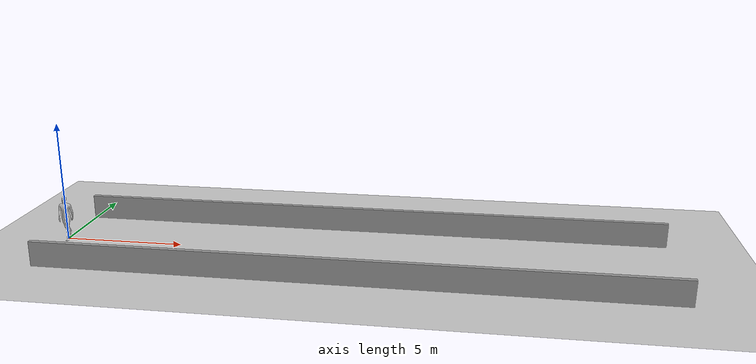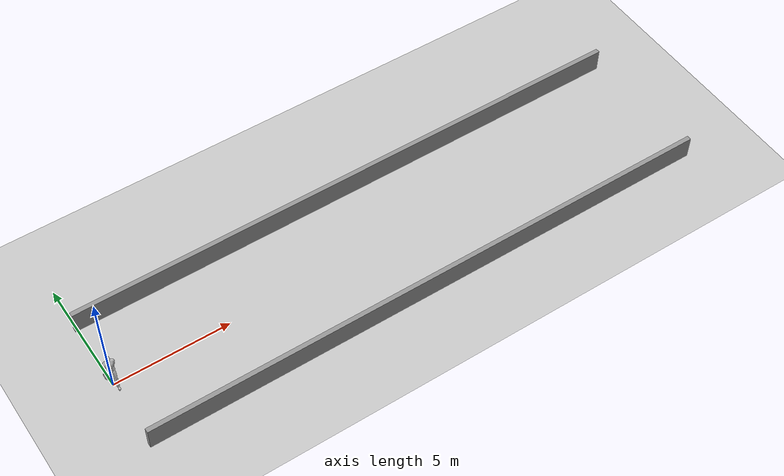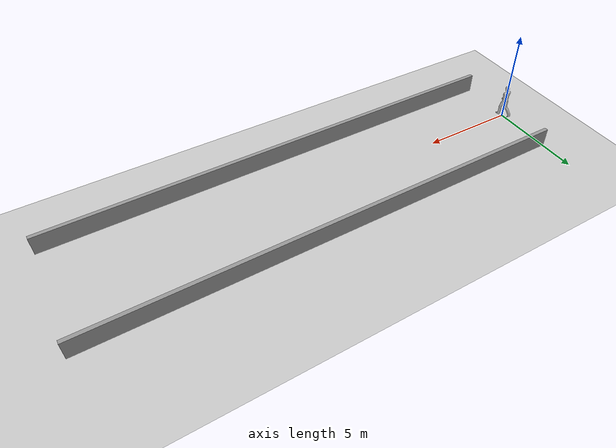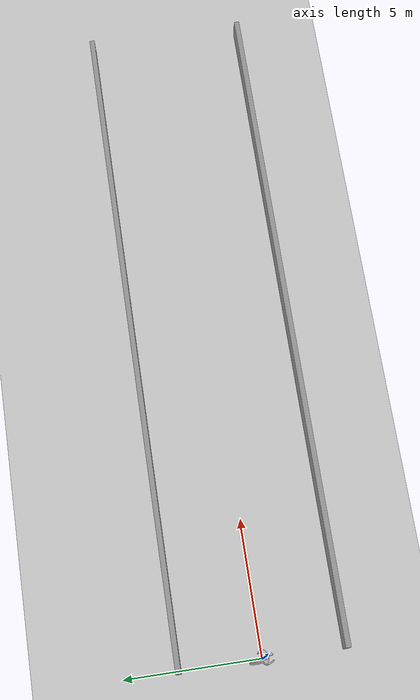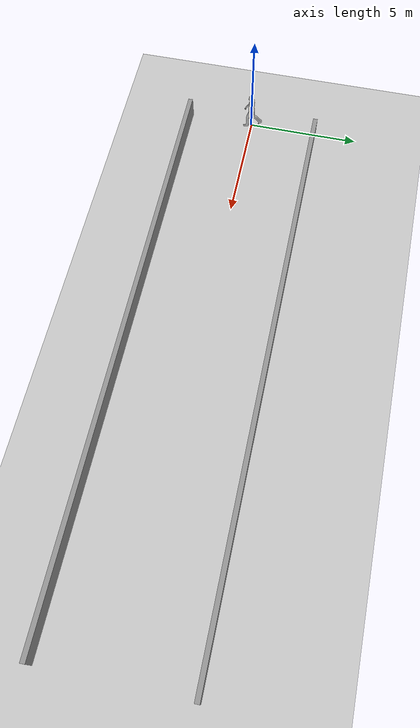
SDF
<?xml version="1.0" ?>
<sdf version="1.3">
  <world name="default">
    <!-- A global light source -->
    <include>
      <uri>model://sun</uri>
    </include>

    <!-- A ground plane -->
    <include>
      <uri>model://ground_plane</uri>
    </include>

    <model name='person_walking'>
      <link name='ped_link_1'>
        <gravity>0</gravity>
        <collision name='bottom'>
          <pose>0 0 0 0 0 0</pose>
            <geometry>
                      <cylinder>
                        <radius>0.1</radius>
                        <length>0.4</length>
                      </cylinder>
            </geometry>
          <max_contacts>10</max_contacts>
          <surface>
            <contact>
              <ode/>
            </contact>
            <bounce/>
            <friction>
            <torsional>
              <ode/>
            </torsional>
            <ode/>
          </friction>
          </surface>
        </collision>
        <collision name='person'>
          <pose>0 0 0 0 0 0</pose>
          <geometry>
            <mesh>
              <uri>model://person_walking/meshes/walking.dae</uri>
            </mesh>
          </geometry>
          <max_contacts>10</max_contacts>
        </collision>
        <visual name='visual'>
          <pose frame=''>0 0 0 0 -0 0</pose>
            <geometry>
              <mesh>
                <uri>model://person_walking/meshes/walking.dae</uri>
              </mesh>
            </geometry>
        </visual>
        <self_collide>0</self_collide>
      </link>
        <plugin name="object_controller" filename="libgazebo_ros_planar_move.so">
          <commandTopic>ped_link_1</commandTopic>
          <ini_x>10</ini_x>
          <ini_y>0</ini_y>
          <odometryTopic>odom</odometryTopic>
          <odometryFrame>odom</odometryFrame>
          <odometryRate>10.0</odometryRate>
          <robotBaseFrame>ped_link_1</robotBaseFrame>
        </plugin>
    </model>

        <model name='person_walking_2'>
          <link name='ped_link_2'>
          <gravity>0</gravity>
          <collision name='bottom'>
            <pose >0 0 0 0 0 0</pose>
            <geometry>
                      <cylinder>
                        <radius>0.1</radius>
                        <length>0.5</length>
                      </cylinder>
            </geometry>
          <max_contacts>10</max_contacts>
            <surface>
              <contact>
                <ode/>
              </contact>
            <bounce/>
             <friction>
               <torsional>
                 <ode/>
               </torsional>
               <ode/>
             </friction>
            </surface>
          </collision>
      <collision name='person'>
        <pose>0 0 0 0 0 0</pose>
        <geometry>
          <mesh>
            <uri>model://person_walking/meshes/walking.dae</uri>
          </mesh>
        </geometry>
        <max_contacts>10</max_contacts>
        <surface>
          <contact>
            <ode/>
          </contact>
          <bounce/>
          <friction>
            <torsional>
              <ode/>
            </torsional>
            <ode/>
          </friction>
        </surface>
      </collision>
          <visual name='visual'>
            <pose>0 0 0 0 -0 0</pose>
                 <geometry>
                   <mesh>
                     <uri>model://person_walking/meshes/walking.dae</uri>
                   </mesh>
                 </geometry>
               </visual>
               <self_collide>0</self_collide>
               <enable_wind>0</enable_wind>
               <kinematic>0</kinematic>
            </link>
            <plugin name="object_controller_2" filename="libgazebo_ros_planar_move.so">
              <commandTopic>ped_link_2</commandTopic>
              <ini_x>20</ini_x>
              <ini_y>0</ini_y>
              <odometryTopic>odom</odometryTopic>
              <odometryFrame>odom</odometryFrame>
              <odometryRate>10.0</odometryRate>
              <robotBaseFrame>ped_link_2</robotBaseFrame>
            </plugin>
        </model>

<model name='BuildingDefaultName'>

    <link name='Wall_4'>
      <collision name='Wall_4_Collision'>
        <geometry>
          <box>
            <size>25.2 0.2 2</size>
          </box>
        </geometry>
        <pose>12.5 0 0 0 -0 0</pose>
      </collision>
      <visual name='Wall_4_Visual'>
        <pose>12.5 0 0 0 -0 0</pose>
        <geometry>
          <box>
            <size>25.2 0.2 2</size>
          </box>
        </geometry>
        <material>
          <script>
            <uri>file://media/materials/scripts/gazebo.material</uri>
            <name>Gazebo/Grey</name>
          </script>
        </material>
      </visual>
      <velocity_decay>
        <linear>0</linear>
        <angular>0</angular>
      </velocity_decay>
      <pose>0.0 3.0 0 0 -0 0</pose>
    </link>
    <link name='Wall_6'>
      <collision name='Wall_6_Collision'>
        <geometry>
          <box>
            <size>25.2 0.2 2</size>
          </box>
        </geometry>
        <pose>12.5 0 0 0 -0 0</pose>
      </collision>
      <visual name='Wall_6_Visual'>
        <pose>12.5 0 0 0 -0 0</pose>
        <geometry>
          <box>
            <size>25.2 0.2 2</size>
          </box>
        </geometry>
        <material>
          <script>
            <uri>file://media/materials/scripts/gazebo.material</uri>
            <name>Gazebo/Grey</name>
          </script>
        </material>
      </visual>
      <velocity_decay>
        <linear>0</linear>
        <angular>0</angular>
      </velocity_decay>
      <pose>0 -3.0 0 0 -0 0</pose>
    </link>
    <static>1</static>
  </model>

  </world>
</sdf>
